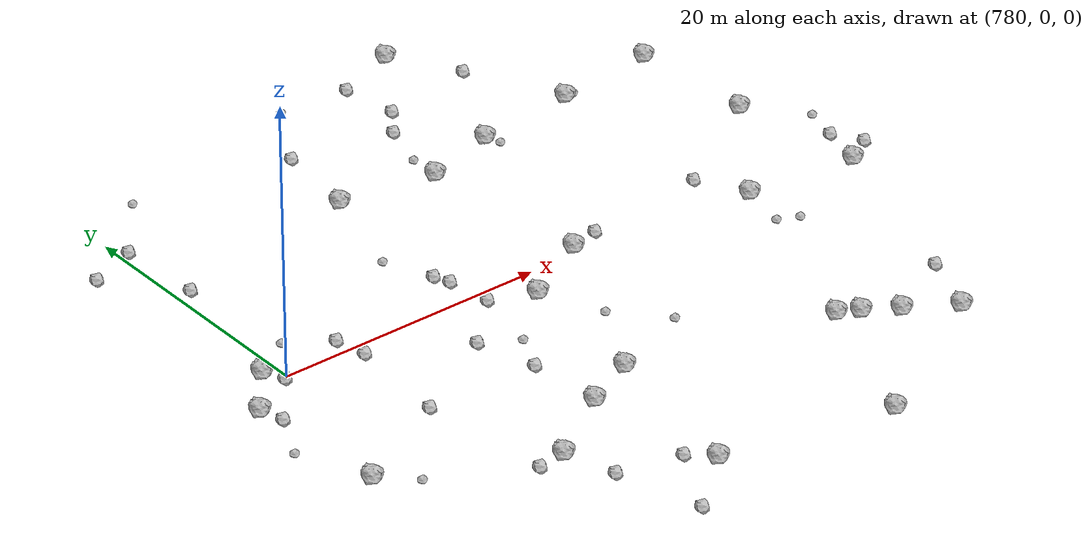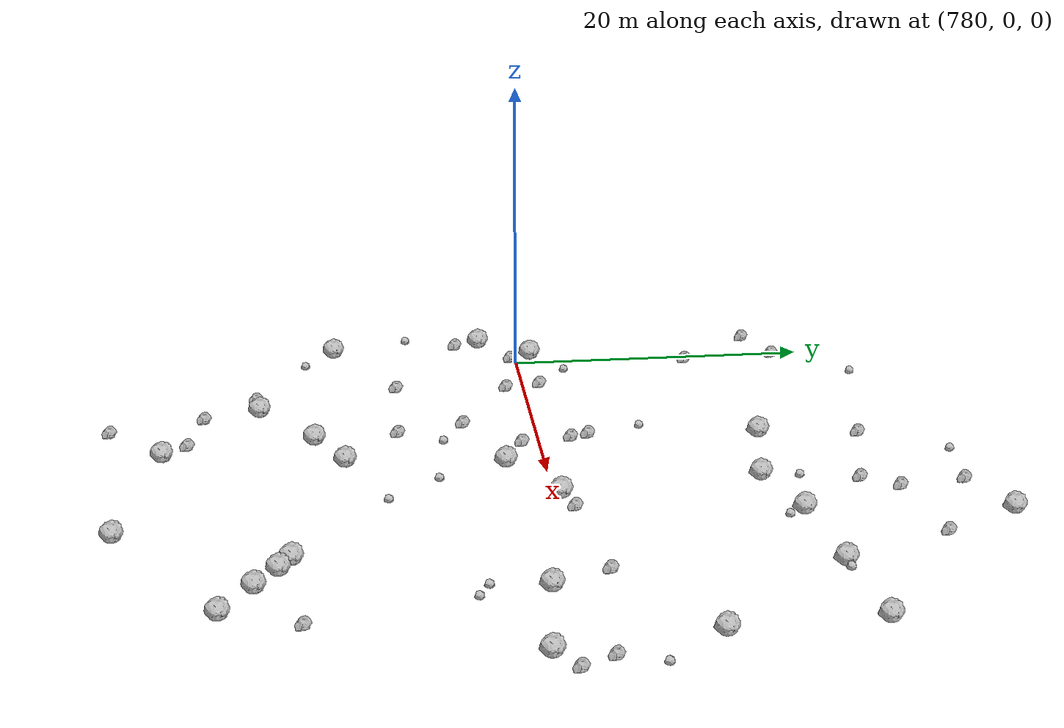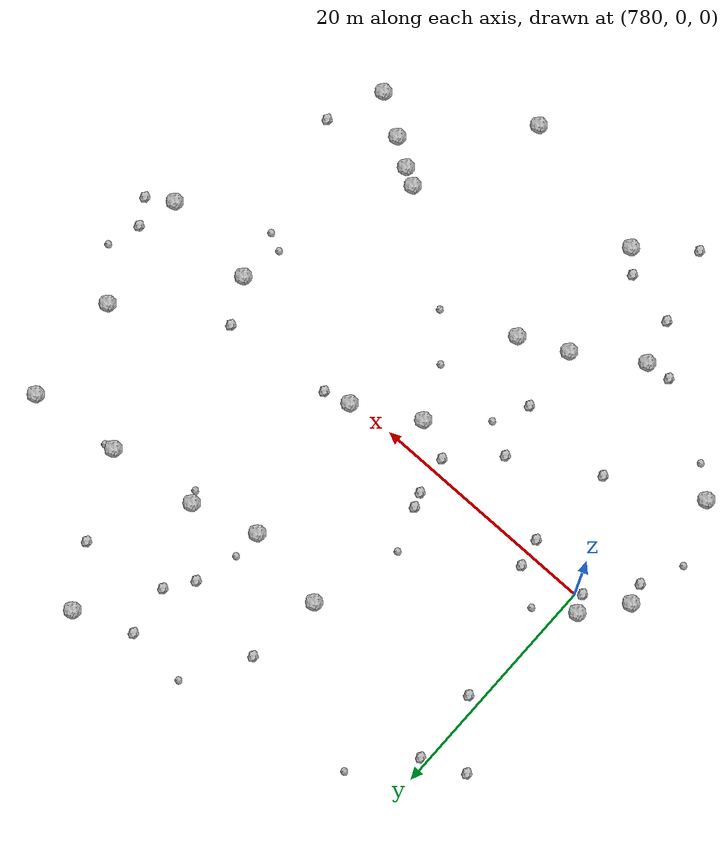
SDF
<sdf version="1.6">
 <world name="default">
  <include><uri>model://sun</uri></include>
  <model name="rock1_20_4">
   <include><uri>model://rock1</uri><pose>793.4771527351343 -14.630572567068478 0.5 0 0 0</pose></include>
  </model>
  <model name="rock1_20_5">
   <include><uri>model://rock1</uri><pose>803.993904393005 0.4170401691955625 0.5 0 0 0</pose></include>
  </model>
  <model name="rock1_20_6">
   <include><uri>model://rock1</uri><pose>795.3765631696665 -24.49226152245809 0.5 0 0 0</pose></include>
  </model>
  <model name="rock1_20_7">
   <include><uri>model://rock1</uri><pose>813.5684266765255 -17.31766562921619 0.5 0 0 0</pose></include>
  </model>
  <model name="rock1_20_8">
   <include><uri>model://rock1</uri><pose>798.6034447051953 -2.522067826317258 0.5 0 0 0</pose></include>
  </model>
  <model name="rock1_20_9">
   <include><uri>model://rock1</uri><pose>823.5559701929471 16.77619789914693 0.5 0 0 0</pose></include>
  </model>
  <model name="rock1_20_10">
   <include><uri>model://rock1</uri><pose>809.4669803513033 27.887461193906482 0.5 0 0 0</pose></include>
  </model>
  <model name="rock1_20_11">
   <include><uri>model://rock1</uri><pose>812.1362183411001 -16.52331854761936 0.5 0 0 0</pose></include>
  </model>
  <model name="rock1_20_12">
   <include><uri>model://rock1</uri><pose>807.7511777698763 -27.18815511861802 0.5 0 0 0</pose></include>
  </model>
  <model name="rock1_20_13">
   <include><uri>model://rock1</uri><pose>776.1562625040906 -2.4118051718097995 0.5 0 0 0</pose></include>
  </model>
  <model name="rock1_20_14">
   <include><uri>model://rock1</uri><pose>788.1046979473066 -18.143796811679717 0.5 0 0 0</pose></include>
  </model>
  <model name="rock1_20_15">
   <include><uri>model://rock1</uri><pose>795.3180385292453 14.47945874236698 0.5 0 0 0</pose></include>
  </model>
  <model name="rock1_20_16">
   <include><uri>model://rock1</uri><pose>817.4587529155116 -1.6785428862249354 0.5 0 0 0</pose></include>
  </model>
  <model name="rock1_20_17">
   <include><uri>model://rock1</uri><pose>815.8091193636195 -18.768182402709996 0.5 0 0 0</pose></include>
  </model>
  <model name="rock1_20_18">
   <include><uri>model://rock1</uri><pose>815.8305770236288 15.921154298437777 0.5 0 0 0</pose></include>
  </model>
  <model name="rock1_20_19">
   <include><uri>model://rock1</uri><pose>825.8149318373793 -2.6130257766247063 0.5 0 0 0</pose></include>
  </model>
  <model name="rock1_20_20">
   <include><uri>model://rock1</uri><pose>808.1109649979785 15.017750799586189 0.5 0 0 0</pose></include>
  </model>
  <model name="rock1_20_21">
   <include><uri>model://rock1</uri><pose>802.4990904137666 13.334358542475222 0.5 0 0 0</pose></include>
  </model>
  <model name="rock1_20_22">
   <include><uri>model://rock1</uri><pose>824.222573926271 7.327943793616157 0.5 0 0 0</pose></include>
  </model>
  <model name="rock1_20_23">
   <include><uri>model://rock1</uri><pose>797.4590369310827 -12.779276461770454 0.5 0 0 0</pose></include>
  </model>
  <model name="rock1_20_24">
   <include><uri>model://rock1</uri><pose>777.1305760949726 -12.800232221038268 0.5 0 0 0</pose></include>
  </model>
  <model name="rock1_20_25">
   <include><uri>model://rock1</uri><pose>819.1535611411581 -20.831111623278584 0.5 0 0 0</pose></include>
  </model>
  <model name="rock1_20_26">
   <include><uri>model://rock1</uri><pose>778.8890325951297 1.0423613444754984 0.5 0 0 0</pose></include>
  </model>
  <model name="rock2_20_0">
   <include><uri>model://rock2</uri><pose>806.195680923843 1.0315242268319622 0.3 0 0 0</pose></include>
  </model>
  <model name="rock2_20_1">
   <include><uri>model://rock2</uri><pose>812.35764671132 22.98537893339998 0.3 0 0 0</pose></include>
  </model>
  <model name="rock2_20_2">
   <include><uri>model://rock2</uri><pose>827.8947628479042 -1.285604871420336 0.3 0 0 0</pose></include>
  </model>
  <model name="rock2_20_3">
   <include><uri>model://rock2</uri><pose>785.279188367853 -1.2501643835972445 0.3 0 0 0</pose></include>
  </model>
  <model name="rock2_20_4">
   <include><uri>model://rock2</uri><pose>792.9227385468348 -9.140945870084238 0.3 0 0 0</pose></include>
  </model>
  <model name="rock2_20_5">
   <include><uri>model://rock2</uri><pose>795.3701951314401 -1.1654530556878235 0.3 0 0 0</pose></include>
  </model>
  <model name="rock2_20_6">
   <include><uri>model://rock2</uri><pose>805.1895452607283 21.72857008721156 0.3 0 0 0</pose></include>
  </model>
  <model name="rock2_20_7">
   <include><uri>model://rock2</uri><pose>793.7895465482725 -22.890851653491815 0.3 0 0 0</pose></include>
  </model>
  <model name="rock2_20_8">
   <include><uri>model://rock2</uri><pose>826.6530466415306 0.8074287888027278 0.3 0 0 0</pose></include>
  </model>
  <model name="rock2_20_9">
   <include><uri>model://rock2</uri><pose>794.8442980412754 2.100186475021843 0.3 0 0 0</pose></include>
  </model>
  <model name="rock2_20_10">
   <include><uri>model://rock2</uri><pose>776.9662748723117 16.673966480619754 0.3 0 0 0</pose></include>
  </model>
  <model name="rock2_20_11">
   <include><uri>model://rock2</uri><pose>781.0119741007553 11.849661711625608 0.3 0 0 0</pose></include>
  </model>
  <model name="rock2_20_12">
   <include><uri>model://rock2</uri><pose>779.5611104469285 -0.38763540468267266 0.3 0 0 0</pose></include>
  </model>
  <model name="rock2_20_13">
   <include><uri>model://rock2</uri><pose>776.6195491876058 -4.106856019905447 0.3 0 0 0</pose></include>
  </model>
  <model name="rock2_20_14">
   <include><uri>model://rock2</uri><pose>821.0750999889551 -16.05076739197994 0.3 0 0 0</pose></include>
  </model>
  <model name="rock2_20_15">
   <include><uri>model://rock2</uri><pose>791.6892893186556 -4.756726044346006 0.3 0 0 0</pose></include>
  </model>
  <model name="rock2_20_16">
   <include><uri>model://rock2</uri><pose>789.1731499852913 -21.83176495375797 0.3 0 0 0</pose></include>
  </model>
  <model name="rock2_20_17">
   <include><uri>model://rock2</uri><pose>785.9325196829551 -18.357503775808173 0.3 0 0 0</pose></include>
  </model>
  <model name="rock2_20_18">
   <include><uri>model://rock2</uri><pose>803.591691193275 19.484106008174678 0.3 0 0 0</pose></include>
  </model>
  <model name="rock2_20_19">
   <include><uri>model://rock2</uri><pose>780.5717549281754 18.170611903530805 0.3 0 0 0</pose></include>
  </model>
  <model name="rock2_20_20">
   <include><uri>model://rock2</uri><pose>794.4065950260485 3.285252983065206 0.3 0 0 0</pose></include>
  </model>
  <model name="rock2_20_21">
   <include><uri>model://rock2</uri><pose>804.5319040593789 25.99699218773499 0.3 0 0 0</pose></include>
  </model>
  <model name="rock2_20_22">
   <include><uri>model://rock2</uri><pose>815.5259463473736 1.977415624255869 0.3 0 0 0</pose></include>
  </model>
  <model name="rock2_20_23">
   <include><uri>model://rock2</uri><pose>784.6837069332361 -8.783608103491773 0.3 0 0 0</pose></include>
  </model>
  <model name="rock2_20_24">
   <include><uri>model://rock2</uri><pose>784.7885799898892 1.1200340051337108 0.3 0 0 0</pose></include>
  </model>
  <model name="rock2_20_25">
   <include><uri>model://rock2</uri><pose>796.0781959978422 21.003207612237524 0.3 0 0 0</pose></include>
  </model>
  <model name="rock2_20_26">
   <include><uri>model://rock2</uri><pose>790.9953605609394 -28.01106051643726 0.3 0 0 0</pose></include>
  </model>
  <model name="rock3_20_0">
   <include><uri>model://rock3</uri><pose>784.3962284740124 23.036219512185028 0.2 0 0 0</pose></include>
  </model>
  <model name="rock3_20_1">
   <include><uri>model://rock3</uri><pose>779.4113963622233 -14.853688657519893 0.2 0 0 0</pose></include>
  </model>
  <model name="rock3_20_2">
   <include><uri>model://rock3</uri><pose>800.5709495026383 -6.958747049310464 0.2 0 0 0</pose></include>
  </model>
  <model name="rock3_20_3">
   <include><uri>model://rock3</uri><pose>818.1549083249248 -5.95289520443081 0.2 0 0 0</pose></include>
  </model>
  <model name="rock3_20_4">
   <include><uri>model://rock3</uri><pose>808.5607500516207 14.015482867670116 0.2 0 0 0</pose></include>
  </model>
  <model name="rock3_20_5">
   <include><uri>model://rock3</uri><pose>781.8953439470002 3.1284328673904227 0.2 0 0 0</pose></include>
  </model>
  <model name="rock3_20_6">
   <include><uri>model://rock3</uri><pose>803.6244194767394 -10.331166775246874 0.2 0 0 0</pose></include>
  </model>
  <model name="rock3_20_7">
   <include><uri>model://rock3</uri><pose>816.6672546633391 -5.253635866460961 0.2 0 0 0</pose></include>
  </model>
  <model name="rock3_20_8">
   <include><uri>model://rock3</uri><pose>816.5694657368894 16.048434213796625 0.2 0 0 0</pose></include>
  </model>
  <model name="rock3_20_9">
   <include><uri>model://rock3</uri><pose>774.9551882733598 -7.575381014562492 0.2 0 0 0</pose></include>
  </model>
  <model name="rock3_20_10">
   <include><uri>model://rock3</uri><pose>802.5071276642508 15.817619035937895 0.2 0 0 0</pose></include>
  </model>
  <model name="rock3_20_11">
   <include><uri>model://rock3</uri><pose>799.2458294406867 26.39119024652593 0.2 0 0 0</pose></include>
  </model>
  <model name="rock3_20_12">
   <include><uri>model://rock3</uri><pose>794.3237689941593 -6.234977258160541 0.2 0 0 0</pose></include>
  </model>
  <model name="rock3_20_13">
   <include><uri>model://rock3</uri><pose>827.4881407267158 3.5784508039616227 0.2 0 0 0</pose></include>
  </model>
  <model name="rock3_20_14">
   <include><uri>model://rock3</uri><pose>792.9928435971688 6.870881350914743 0.2 0 0 0</pose></include>
  </model>
 </world>
</sdf>
